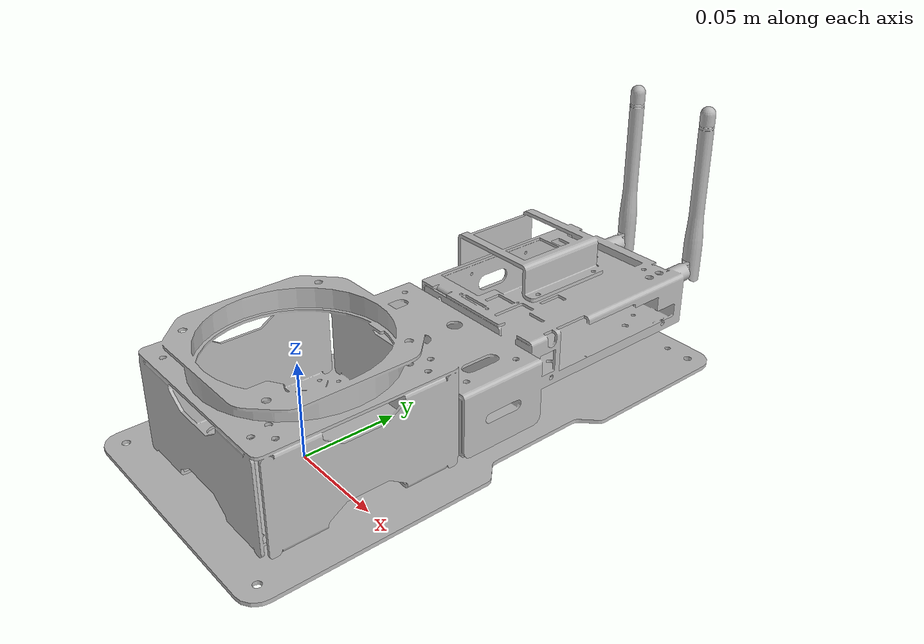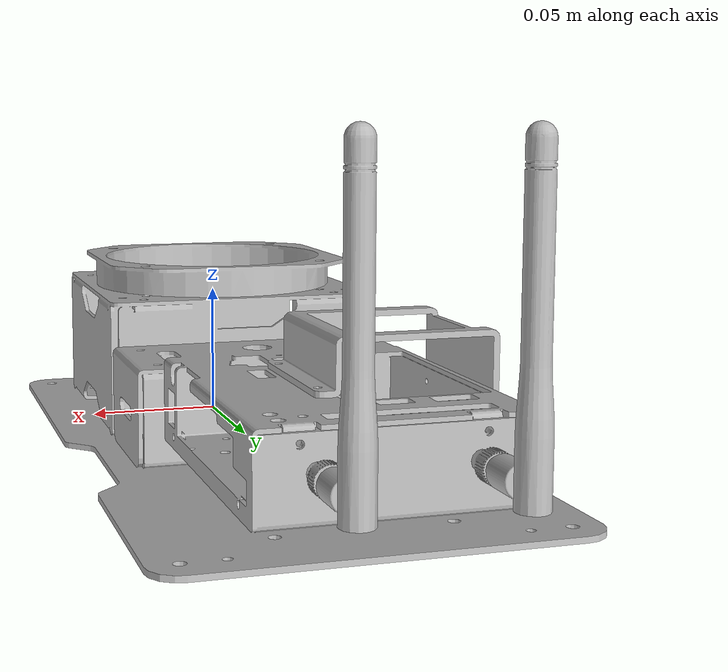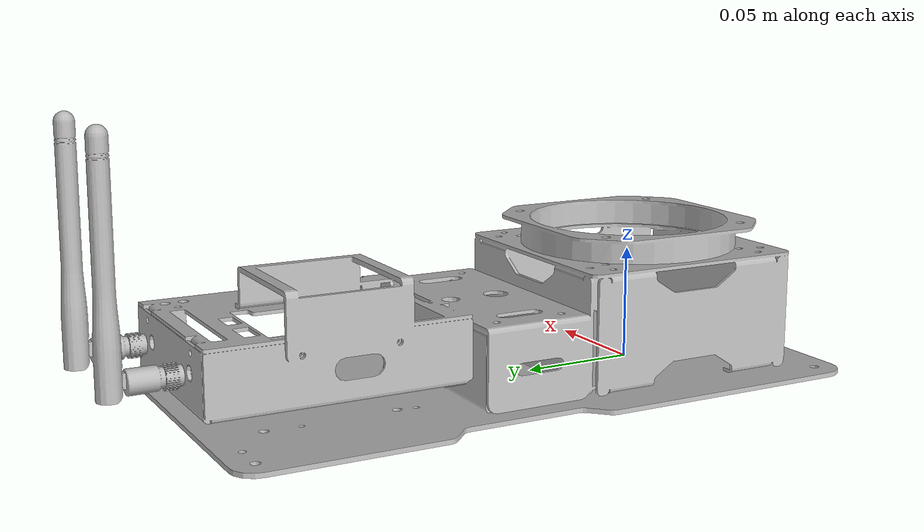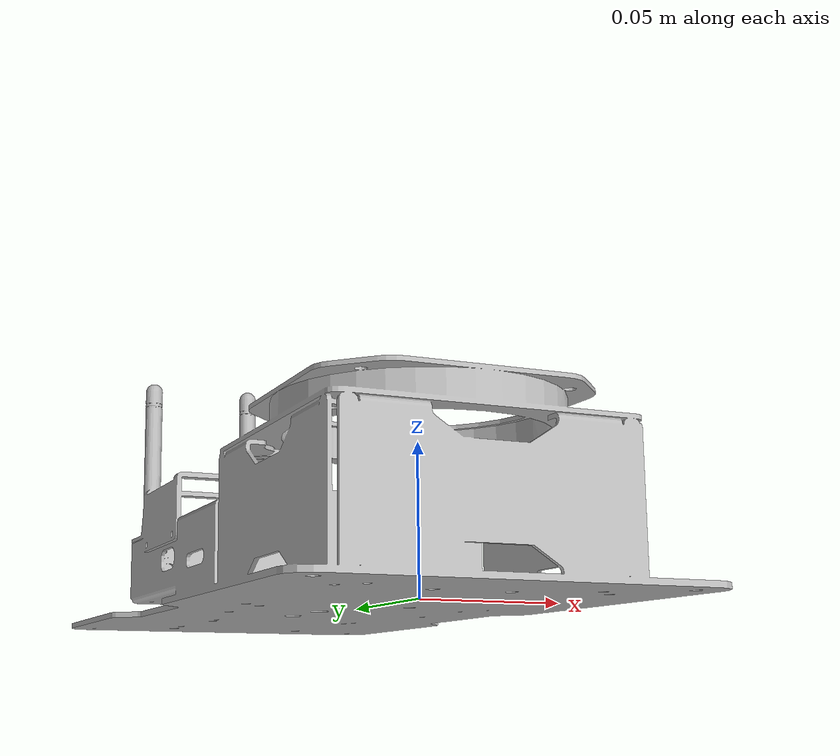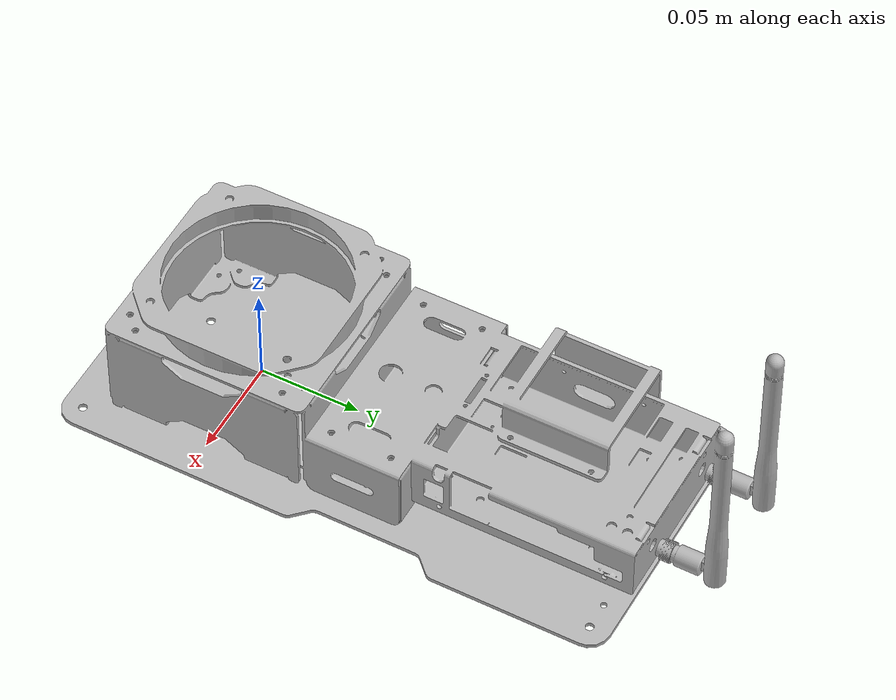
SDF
<?xml version="1.0" ?>
<sdf version='1.7'>
  <!-- Model -->
  <model name='jetmax'>
    <!-- Base joint -->
    <joint name='base_joint' type='fixed'>
      <pose relative_to='__model__'>0 0 0 0 -0 0</pose>
      <parent>world</parent>
      <child>Base</child>
    </joint>
    <!-- Base -->
    <link name='Base'>
      <pose relative_to='base_joint'>0 0 0 0 -0 0</pose>
      <inertial>
        <pose>0.010476 0.000747 0.035226 0 -0 0</pose>
        <mass>1.886</mass>
        <inertia>
          <ixx>0.00119622</ixx>
          <ixy>-2.9358e-05</ixy>
          <ixz>1.4859e-05</ixz>
          <iyy>0.001148</iyy>
          <iyz>1.6274e-05</iyz>
          <izz>0.00142562</izz>
        </inertia>
      </inertial>
      <collision name='Base_collision'>
        <pose>0 0 0 0 -0 0</pose>
        <geometry>
          <mesh>
            <scale>1 1 1</scale>
            <uri>model://jetmax_description/meshes/Base.STL</uri>
          </mesh>
        </geometry>
      </collision>
      <visual name='Base_visual'>
        <pose>0 0 0 0 -0 0</pose>
        <geometry>
          <mesh>
            <scale>1 1 1</scale>
            <uri>model://jetmax_description/meshes/Base.STL</uri>
          </mesh>
        </geometry>
      </visual>
    </link> <!-- Base end -->
  </model>
</sdf>
